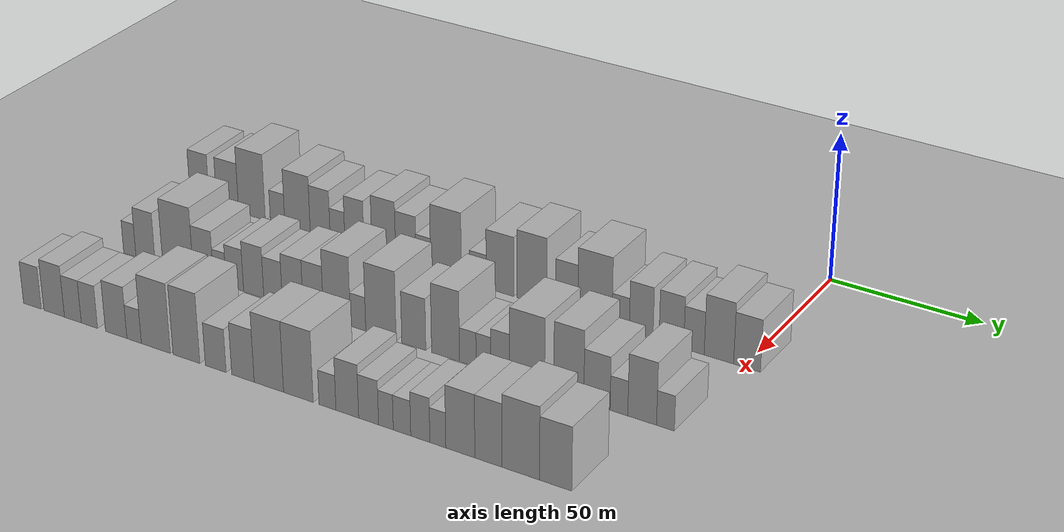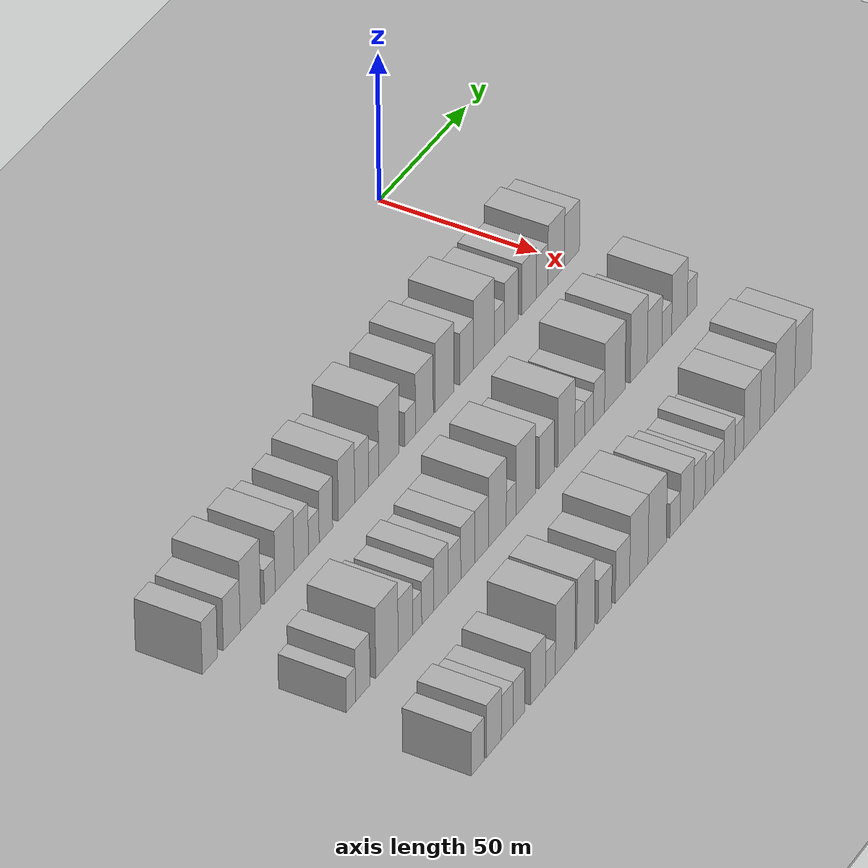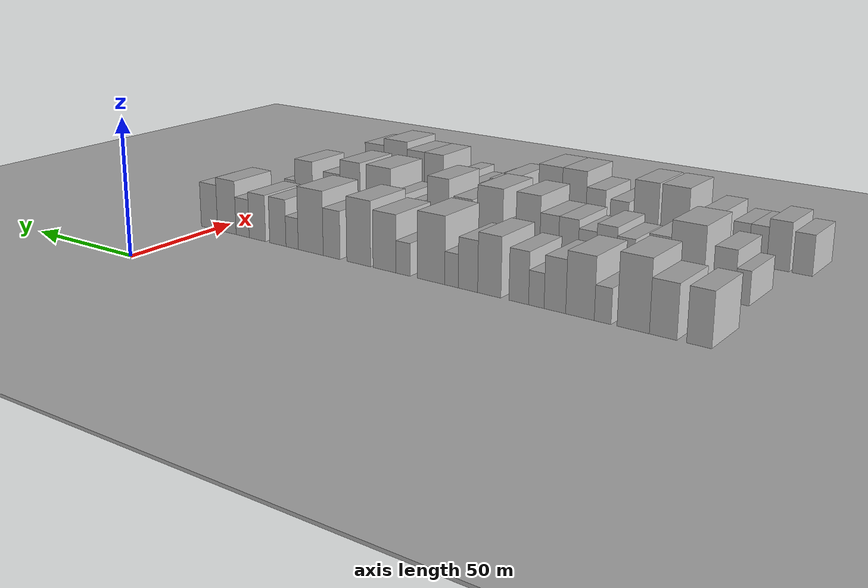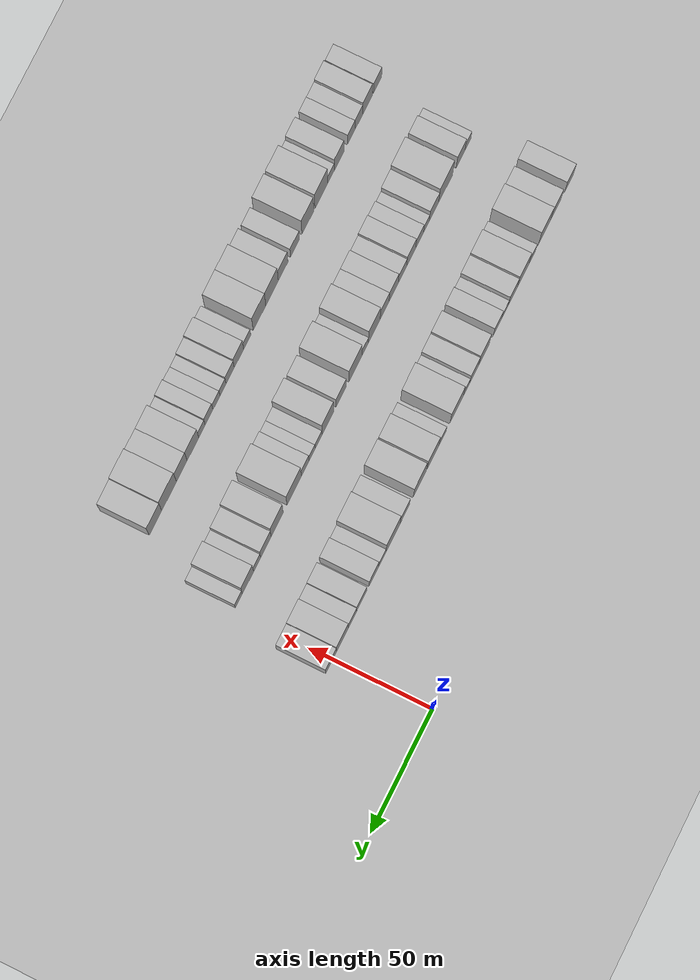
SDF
<sdf version="1.6">
 <world name="default">
  <include><name>ground_plane_1</name><uri>model://HANNAS_ground_plane</uri></include>
  <include>
   <name>ground_plane_2</name>
   <uri>model://HANNAS_ground_plane</uri>
   <pose>100 0 0  0 0 0</pose>
  </include>
  <model name="building_50">
   <static>1</static>
   <pose>50.0000 -196.6402 0 0.000000 0.000000 0.000000</pose>
   <link name="link">
    <pose>0 0 9.00 0 0 0</pose>
    <collision name="collision"><geometry><box><size>20.0000 7.7727 18.0000</size></box></geometry></collision>
    <visual name="visual">
     <cast_shadows>0</cast_shadows>
     <geometry><box><size>20.0000 7.7727 18.0000</size></box></geometry>
     <material>
      <script>
       <uri>model://HANNAS_wall/materials/scripts</uri>
       <uri>model://HANNAS_wall/materials/textures</uri>
       <name>vrc/HANNAS_wall</name>
      </script>
     </material>
    </visual>
   </link>
  </model>
  <model name="building_51">
   <static>1</static>
   <pose>50.0000 -185.3771 0 0.000000 0.000000 0.000000</pose>
   <link name="link">
    <pose>0 0 9.00 0 0 0</pose>
    <collision name="collision"><geometry><box><size>20.0000 8.7536 18.0000</size></box></geometry></collision>
    <visual name="visual">
     <cast_shadows>0</cast_shadows>
     <geometry><box><size>20.0000 8.7536 18.0000</size></box></geometry>
     <material>
      <script>
       <uri>model://HANNAS_wall/materials/scripts</uri>
       <uri>model://HANNAS_wall/materials/textures</uri>
       <name>vrc/HANNAS_wall</name>
      </script>
     </material>
    </visual>
   </link>
  </model>
  <model name="building_52">
   <static>1</static>
   <pose>50.0000 -175.7151 0 0.000000 0.000000 0.000000</pose>
   <link name="link">
    <pose>0 0 12.00 0 0 0</pose>
    <collision name="collision"><geometry><box><size>20.0000 10.5704 24.0000</size></box></geometry></collision>
    <visual name="visual">
     <cast_shadows>0</cast_shadows>
     <geometry><box><size>20.0000 10.5704 24.0000</size></box></geometry>
     <material>
      <script>
       <uri>model://HANNAS_wall/materials/scripts</uri>
       <uri>model://HANNAS_wall/materials/textures</uri>
       <name>vrc/HANNAS_wall</name>
      </script>
     </material>
    </visual>
   </link>
  </model>
  <model name="building_53">
   <static>1</static>
   <pose>50.0000 -165.5970 0 0.000000 0.000000 0.000000</pose>
   <link name="link">
    <pose>0 0 6.00 0 0 0</pose>
    <collision name="collision"><geometry><box><size>20.0000 5.6657 12.0000</size></box></geometry></collision>
    <visual name="visual">
     <cast_shadows>0</cast_shadows>
     <geometry><box><size>20.0000 5.6657 12.0000</size></box></geometry>
     <material>
      <script>
       <uri>model://HANNAS_wall/materials/scripts</uri>
       <uri>model://HANNAS_wall/materials/textures</uri>
       <name>vrc/HANNAS_wall</name>
      </script>
     </material>
    </visual>
   </link>
  </model>
  <model name="building_54">
   <static>1</static>
   <pose>50.0000 -157.8169 0 0.000000 0.000000 0.000000</pose>
   <link name="link">
    <pose>0 0 10.50 0 0 0</pose>
    <collision name="collision"><geometry><box><size>20.0000 9.8945 21.0000</size></box></geometry></collision>
    <visual name="visual">
     <cast_shadows>0</cast_shadows>
     <geometry><box><size>20.0000 9.8945 21.0000</size></box></geometry>
     <material>
      <script>
       <uri>model://HANNAS_wall/materials/scripts</uri>
       <uri>model://HANNAS_wall/materials/textures</uri>
       <name>vrc/HANNAS_wall</name>
      </script>
     </material>
    </visual>
   </link>
  </model>
  <model name="building_55">
   <static>1</static>
   <pose>50.0000 -149.0319 0 0.000000 0.000000 0.000000</pose>
   <link name="link">
    <pose>0 0 9.00 0 0 0</pose>
    <collision name="collision"><geometry><box><size>20.0000 7.6756 18.0000</size></box></geometry></collision>
    <visual name="visual">
     <cast_shadows>0</cast_shadows>
     <geometry><box><size>20.0000 7.6756 18.0000</size></box></geometry>
     <material>
      <script>
       <uri>model://HANNAS_wall/materials/scripts</uri>
       <uri>model://HANNAS_wall/materials/textures</uri>
       <name>vrc/HANNAS_wall</name>
      </script>
     </material>
    </visual>
   </link>
  </model>
  <model name="building_56">
   <static>1</static>
   <pose>50.0000 -142.3919 0 0.000000 0.000000 0.000000</pose>
   <link name="link">
    <pose>0 0 6.00 0 0 0</pose>
    <collision name="collision"><geometry><box><size>20.0000 5.6045 12.0000</size></box></geometry></collision>
    <visual name="visual">
     <cast_shadows>0</cast_shadows>
     <geometry><box><size>20.0000 5.6045 12.0000</size></box></geometry>
     <material>
      <script>
       <uri>model://HANNAS_wall/materials/scripts</uri>
       <uri>model://HANNAS_wall/materials/textures</uri>
       <name>vrc/HANNAS_wall</name>
      </script>
     </material>
    </visual>
   </link>
  </model>
  <model name="building_57">
   <static>1</static>
   <pose>50.0000 -135.9577 0 0.000000 0.000000 0.000000</pose>
   <link name="link">
    <pose>0 0 9.00 0 0 0</pose>
    <collision name="collision"><geometry><box><size>20.0000 7.2639 18.0000</size></box></geometry></collision>
    <visual name="visual">
     <cast_shadows>0</cast_shadows>
     <geometry><box><size>20.0000 7.2639 18.0000</size></box></geometry>
     <material>
      <script>
       <uri>model://HANNAS_wall/materials/scripts</uri>
       <uri>model://HANNAS_wall/materials/textures</uri>
       <name>vrc/HANNAS_wall</name>
      </script>
     </material>
    </visual>
   </link>
  </model>
  <model name="building_58">
   <static>1</static>
   <pose>50.0000 -124.8921 0 0.000000 0.000000 0.000000</pose>
   <link name="link">
    <pose>0 0 10.50 0 0 0</pose>
    <collision name="collision"><geometry><box><size>20.0000 8.8673 21.0000</size></box></geometry></collision>
    <visual name="visual">
     <cast_shadows>0</cast_shadows>
     <geometry><box><size>20.0000 8.8673 21.0000</size></box></geometry>
     <material>
      <script>
       <uri>model://HANNAS_wall/materials/scripts</uri>
       <uri>model://HANNAS_wall/materials/textures</uri>
       <name>vrc/HANNAS_wall</name>
      </script>
     </material>
    </visual>
   </link>
  </model>
  <model name="building_59">
   <static>1</static>
   <pose>50.0000 -116.6675 0 0.000000 0.000000 0.000000</pose>
   <link name="link">
    <pose>0 0 9.00 0 0 0</pose>
    <collision name="collision"><geometry><box><size>20.0000 7.5818 18.0000</size></box></geometry></collision>
    <visual name="visual">
     <cast_shadows>0</cast_shadows>
     <geometry><box><size>20.0000 7.5818 18.0000</size></box></geometry>
     <material>
      <script>
       <uri>model://HANNAS_wall/materials/scripts</uri>
       <uri>model://HANNAS_wall/materials/textures</uri>
       <name>vrc/HANNAS_wall</name>
      </script>
     </material>
    </visual>
   </link>
  </model>
  <model name="building_60">
   <static>1</static>
   <pose>50.0000 -110.1980 0 0.000000 0.000000 0.000000</pose>
   <link name="link">
    <pose>0 0 6.00 0 0 0</pose>
    <collision name="collision"><geometry><box><size>20.0000 5.3574 12.0000</size></box></geometry></collision>
    <visual name="visual">
     <cast_shadows>0</cast_shadows>
     <geometry><box><size>20.0000 5.3574 12.0000</size></box></geometry>
     <material>
      <script>
       <uri>model://HANNAS_wall/materials/scripts</uri>
       <uri>model://HANNAS_wall/materials/textures</uri>
       <name>vrc/HANNAS_wall</name>
      </script>
     </material>
    </visual>
   </link>
  </model>
  <model name="building_61">
   <static>1</static>
   <pose>50.0000 -101.9220 0 0.000000 0.000000 0.000000</pose>
   <link name="link">
    <pose>0 0 12.00 0 0 0</pose>
    <collision name="collision"><geometry><box><size>20.0000 11.1946 24.0000</size></box></geometry></collision>
    <visual name="visual">
     <cast_shadows>0</cast_shadows>
     <geometry><box><size>20.0000 11.1946 24.0000</size></box></geometry>
     <material>
      <script>
       <uri>model://HANNAS_wall/materials/scripts</uri>
       <uri>model://HANNAS_wall/materials/textures</uri>
       <name>vrc/HANNAS_wall</name>
      </script>
     </material>
    </visual>
   </link>
  </model>
  <model name="building_62">
   <static>1</static>
   <pose>50.0000 -90.3593 0 0.000000 0.000000 0.000000</pose>
   <link name="link">
    <pose>0 0 6.00 0 0 0</pose>
    <collision name="collision"><geometry><box><size>20.0000 5.9306 12.0000</size></box></geometry></collision>
    <visual name="visual">
     <cast_shadows>0</cast_shadows>
     <geometry><box><size>20.0000 5.9306 12.0000</size></box></geometry>
     <material>
      <script>
       <uri>model://HANNAS_wall/materials/scripts</uri>
       <uri>model://HANNAS_wall/materials/textures</uri>
       <name>vrc/HANNAS_wall</name>
      </script>
     </material>
    </visual>
   </link>
  </model>
  <model name="building_63">
   <static>1</static>
   <pose>50.0000 -82.4639 0 0.000000 0.000000 0.000000</pose>
   <link name="link">
    <pose>0 0 10.50 0 0 0</pose>
    <collision name="collision"><geometry><box><size>20.0000 9.8602 21.0000</size></box></geometry></collision>
    <visual name="visual">
     <cast_shadows>0</cast_shadows>
     <geometry><box><size>20.0000 9.8602 21.0000</size></box></geometry>
     <material>
      <script>
       <uri>model://HANNAS_wall/materials/scripts</uri>
       <uri>model://HANNAS_wall/materials/textures</uri>
       <name>vrc/HANNAS_wall</name>
      </script>
     </material>
    </visual>
   </link>
  </model>
  <model name="building_64">
   <static>1</static>
   <pose>50.0000 -71.2264 0 0.000000 0.000000 0.000000</pose>
   <link name="link">
    <pose>0 0 12.00 0 0 0</pose>
    <collision name="collision"><geometry><box><size>20.0000 10.6148 24.0000</size></box></geometry></collision>
    <visual name="visual">
     <cast_shadows>0</cast_shadows>
     <geometry><box><size>20.0000 10.6148 24.0000</size></box></geometry>
     <material>
      <script>
       <uri>model://HANNAS_wall/materials/scripts</uri>
       <uri>model://HANNAS_wall/materials/textures</uri>
       <name>vrc/HANNAS_wall</name>
      </script>
     </material>
    </visual>
   </link>
  </model>
  <model name="building_65">
   <static>1</static>
   <pose>50.0000 -59.0581 0 0.000000 0.000000 0.000000</pose>
   <link name="link">
    <pose>0 0 9.00 0 0 0</pose>
    <collision name="collision"><geometry><box><size>20.0000 7.7218 18.0000</size></box></geometry></collision>
    <visual name="visual">
     <cast_shadows>0</cast_shadows>
     <geometry><box><size>20.0000 7.7218 18.0000</size></box></geometry>
     <material>
      <script>
       <uri>model://HANNAS_wall/materials/scripts</uri>
       <uri>model://HANNAS_wall/materials/textures</uri>
       <name>vrc/HANNAS_wall</name>
      </script>
     </material>
    </visual>
   </link>
  </model>
  <model name="building_66">
   <static>1</static>
   <pose>50.0000 -49.3336 0 0.000000 0.000000 0.000000</pose>
   <link name="link">
    <pose>0 0 12.00 0 0 0</pose>
    <collision name="collision"><geometry><box><size>20.0000 11.7272 24.0000</size></box></geometry></collision>
    <visual name="visual">
     <cast_shadows>0</cast_shadows>
     <geometry><box><size>20.0000 11.7272 24.0000</size></box></geometry>
     <material>
      <script>
       <uri>model://HANNAS_wall/materials/scripts</uri>
       <uri>model://HANNAS_wall/materials/textures</uri>
       <name>vrc/HANNAS_wall</name>
      </script>
     </material>
    </visual>
   </link>
  </model>
  <model name="building_67">
   <static>1</static>
   <pose>50.0000 -40.5230 0 0.000000 0.000000 0.000000</pose>
   <link name="link">
    <pose>0 0 6.00 0 0 0</pose>
    <collision name="collision"><geometry><box><size>20.0000 5.8940 12.0000</size></box></geometry></collision>
    <visual name="visual">
     <cast_shadows>0</cast_shadows>
     <geometry><box><size>20.0000 5.8940 12.0000</size></box></geometry>
     <material>
      <script>
       <uri>model://HANNAS_wall/materials/scripts</uri>
       <uri>model://HANNAS_wall/materials/textures</uri>
       <name>vrc/HANNAS_wall</name>
      </script>
     </material>
    </visual>
   </link>
  </model>
  <model name="building_68">
   <static>1</static>
   <pose>50.0000 -33.5861 0 0.000000 0.000000 0.000000</pose>
   <link name="link">
    <pose>0 0 9.00 0 0 0</pose>
    <collision name="collision"><geometry><box><size>20.0000 7.9797 18.0000</size></box></geometry></collision>
    <visual name="visual">
     <cast_shadows>0</cast_shadows>
     <geometry><box><size>20.0000 7.9797 18.0000</size></box></geometry>
     <material>
      <script>
       <uri>model://HANNAS_wall/materials/scripts</uri>
       <uri>model://HANNAS_wall/materials/textures</uri>
       <name>vrc/HANNAS_wall</name>
      </script>
     </material>
    </visual>
   </link>
  </model>
  <model name="building_69">
   <static>1</static>
   <pose>50.0000 -23.4748 0 0.000000 0.000000 0.000000</pose>
   <link name="link">
    <pose>0 0 9.00 0 0 0</pose>
    <collision name="collision"><geometry><box><size>20.0000 8.2430 18.0000</size></box></geometry></collision>
    <visual name="visual">
     <cast_shadows>0</cast_shadows>
     <geometry><box><size>20.0000 8.2430 18.0000</size></box></geometry>
     <material>
      <script>
       <uri>model://HANNAS_wall/materials/scripts</uri>
       <uri>model://HANNAS_wall/materials/textures</uri>
       <name>vrc/HANNAS_wall</name>
      </script>
     </material>
    </visual>
   </link>
  </model>
  <model name="building_70">
   <static>1</static>
   <pose>50.0000 -15.9888 0 0.000000 0.000000 0.000000</pose>
   <link name="link">
    <pose>0 0 7.50 0 0 0</pose>
    <collision name="collision"><geometry><box><size>20.0000 6.7289 15.0000</size></box></geometry></collision>
    <visual name="visual">
     <cast_shadows>0</cast_shadows>
     <geometry><box><size>20.0000 6.7289 15.0000</size></box></geometry>
     <material>
      <script>
       <uri>model://HANNAS_wall/materials/scripts</uri>
       <uri>model://HANNAS_wall/materials/textures</uri>
       <name>vrc/HANNAS_wall</name>
      </script>
     </material>
    </visual>
   </link>
  </model>
  <model name="building_71">
   <static>1</static>
   <pose>50.0000 -7.8164 0 0.000000 0.000000 0.000000</pose>
   <link name="link">
    <pose>0 0 10.50 0 0 0</pose>
    <collision name="collision"><geometry><box><size>20.0000 9.6159 21.0000</size></box></geometry></collision>
    <visual name="visual">
     <cast_shadows>0</cast_shadows>
     <geometry><box><size>20.0000 9.6159 21.0000</size></box></geometry>
     <material>
      <script>
       <uri>model://HANNAS_wall/materials/scripts</uri>
       <uri>model://HANNAS_wall/materials/textures</uri>
       <name>vrc/HANNAS_wall</name>
      </script>
     </material>
    </visual>
   </link>
  </model>
  <model name="building_72">
   <static>1</static>
   <pose>50.0000 1.3254 0 0.000000 0.000000 0.000000</pose>
   <link name="link">
    <pose>0 0 9.00 0 0 0</pose>
    <collision name="collision"><geometry><box><size>20.0000 8.6677 18.0000</size></box></geometry></collision>
    <visual name="visual">
     <cast_shadows>0</cast_shadows>
     <geometry><box><size>20.0000 8.6677 18.0000</size></box></geometry>
     <material>
      <script>
       <uri>model://HANNAS_wall/materials/scripts</uri>
       <uri>model://HANNAS_wall/materials/textures</uri>
       <name>vrc/HANNAS_wall</name>
      </script>
     </material>
    </visual>
   </link>
  </model>
  <model name="building_187">
   <static>1</static>
   <pose>90.0000 -193.4562 0 0.000000 0.000000 0.000000</pose>
   <link name="link">
    <pose>0 0 6.00 0 0 0</pose>
    <collision name="collision"><geometry><box><size>20.0000 4.8399 12.0000</size></box></geometry></collision>
    <visual name="visual">
     <cast_shadows>0</cast_shadows>
     <geometry><box><size>20.0000 4.8399 12.0000</size></box></geometry>
     <material>
      <script>
       <uri>model://HANNAS_wall/materials/scripts</uri>
       <uri>model://HANNAS_wall/materials/textures</uri>
       <name>vrc/HANNAS_wall</name>
      </script>
     </material>
    </visual>
   </link>
  </model>
  <model name="building_188">
   <static>1</static>
   <pose>90.0000 -187.2485 0 0.000000 0.000000 0.000000</pose>
   <link name="link">
    <pose>0 0 9.00 0 0 0</pose>
    <collision name="collision"><geometry><box><size>20.0000 7.5754 18.0000</size></box></geometry></collision>
    <visual name="visual">
     <cast_shadows>0</cast_shadows>
     <geometry><box><size>20.0000 7.5754 18.0000</size></box></geometry>
     <material>
      <script>
       <uri>model://HANNAS_wall/materials/scripts</uri>
       <uri>model://HANNAS_wall/materials/textures</uri>
       <name>vrc/HANNAS_wall</name>
      </script>
     </material>
    </visual>
   </link>
  </model>
  <model name="building_189">
   <static>1</static>
   <pose>90.0000 -174.5279 0 0.000000 0.000000 0.000000</pose>
   <link name="link">
    <pose>0 0 12.00 0 0 0</pose>
    <collision name="collision"><geometry><box><size>20.0000 11.8659 24.0000</size></box></geometry></collision>
    <visual name="visual">
     <cast_shadows>0</cast_shadows>
     <geometry><box><size>20.0000 11.8659 24.0000</size></box></geometry>
     <material>
      <script>
       <uri>model://HANNAS_wall/materials/scripts</uri>
       <uri>model://HANNAS_wall/materials/textures</uri>
       <name>vrc/HANNAS_wall</name>
      </script>
     </material>
    </visual>
   </link>
  </model>
  <model name="building_190">
   <static>1</static>
   <pose>90.0000 -164.7152 0 0.000000 0.000000 0.000000</pose>
   <link name="link">
    <pose>0 0 9.00 0 0 0</pose>
    <collision name="collision"><geometry><box><size>20.0000 7.7595 18.0000</size></box></geometry></collision>
    <visual name="visual">
     <cast_shadows>0</cast_shadows>
     <geometry><box><size>20.0000 7.7595 18.0000</size></box></geometry>
     <material>
      <script>
       <uri>model://HANNAS_wall/materials/scripts</uri>
       <uri>model://HANNAS_wall/materials/textures</uri>
       <name>vrc/HANNAS_wall</name>
      </script>
     </material>
    </visual>
   </link>
  </model>
  <model name="building_191">
   <static>1</static>
   <pose>90.0000 -158.4291 0 0.000000 0.000000 0.000000</pose>
   <link name="link">
    <pose>0 0 6.00 0 0 0</pose>
    <collision name="collision"><geometry><box><size>20.0000 4.8127 12.0000</size></box></geometry></collision>
    <visual name="visual">
     <cast_shadows>0</cast_shadows>
     <geometry><box><size>20.0000 4.8127 12.0000</size></box></geometry>
     <material>
      <script>
       <uri>model://HANNAS_wall/materials/scripts</uri>
       <uri>model://HANNAS_wall/materials/textures</uri>
       <name>vrc/HANNAS_wall</name>
      </script>
     </material>
    </visual>
   </link>
  </model>
  <model name="building_192">
   <static>1</static>
   <pose>90.0000 -152.7436 0 0.000000 0.000000 0.000000</pose>
   <link name="link">
    <pose>0 0 7.50 0 0 0</pose>
    <collision name="collision"><geometry><box><size>20.0000 6.5583 15.0000</size></box></geometry></collision>
    <visual name="visual">
     <cast_shadows>0</cast_shadows>
     <geometry><box><size>20.0000 6.5583 15.0000</size></box></geometry>
     <material>
      <script>
       <uri>model://HANNAS_wall/materials/scripts</uri>
       <uri>model://HANNAS_wall/materials/textures</uri>
       <name>vrc/HANNAS_wall</name>
      </script>
     </material>
    </visual>
   </link>
  </model>
  <model name="building_193">
   <static>1</static>
   <pose>90.0000 -145.6648 0 0.000000 0.000000 0.000000</pose>
   <link name="link">
    <pose>0 0 9.00 0 0 0</pose>
    <collision name="collision"><geometry><box><size>20.0000 7.5993 18.0000</size></box></geometry></collision>
    <visual name="visual">
     <cast_shadows>0</cast_shadows>
     <geometry><box><size>20.0000 7.5993 18.0000</size></box></geometry>
     <material>
      <script>
       <uri>model://HANNAS_wall/materials/scripts</uri>
       <uri>model://HANNAS_wall/materials/textures</uri>
       <name>vrc/HANNAS_wall</name>
      </script>
     </material>
    </visual>
   </link>
  </model>
  <model name="building_194">
   <static>1</static>
   <pose>90.0000 -138.4148 0 0.000000 0.000000 0.000000</pose>
   <link name="link">
    <pose>0 0 7.50 0 0 0</pose>
    <collision name="collision"><geometry><box><size>20.0000 6.9006 15.0000</size></box></geometry></collision>
    <visual name="visual">
     <cast_shadows>0</cast_shadows>
     <geometry><box><size>20.0000 6.9006 15.0000</size></box></geometry>
     <material>
      <script>
       <uri>model://HANNAS_wall/materials/scripts</uri>
       <uri>model://HANNAS_wall/materials/textures</uri>
       <name>vrc/HANNAS_wall</name>
      </script>
     </material>
    </visual>
   </link>
  </model>
  <model name="building_195">
   <static>1</static>
   <pose>90.0000 -131.1266 0 0.000000 0.000000 0.000000</pose>
   <link name="link">
    <pose>0 0 9.00 0 0 0</pose>
    <collision name="collision"><geometry><box><size>20.0000 7.6757 18.0000</size></box></geometry></collision>
    <visual name="visual">
     <cast_shadows>0</cast_shadows>
     <geometry><box><size>20.0000 7.6757 18.0000</size></box></geometry>
     <material>
      <script>
       <uri>model://HANNAS_wall/materials/scripts</uri>
       <uri>model://HANNAS_wall/materials/textures</uri>
       <name>vrc/HANNAS_wall</name>
      </script>
     </material>
    </visual>
   </link>
  </model>
  <model name="building_196">
   <static>1</static>
   <pose>90.0000 -123.5743 0 0.000000 0.000000 0.000000</pose>
   <link name="link">
    <pose>0 0 9.00 0 0 0</pose>
    <collision name="collision"><geometry><box><size>20.0000 7.4290 18.0000</size></box></geometry></collision>
    <visual name="visual">
     <cast_shadows>0</cast_shadows>
     <geometry><box><size>20.0000 7.4290 18.0000</size></box></geometry>
     <material>
      <script>
       <uri>model://HANNAS_wall/materials/scripts</uri>
       <uri>model://HANNAS_wall/materials/textures</uri>
       <name>vrc/HANNAS_wall</name>
      </script>
     </material>
    </visual>
   </link>
  </model>
  <model name="building_197">
   <static>1</static>
   <pose>90.0000 -114.9617 0 0.000000 0.000000 0.000000</pose>
   <link name="link">
    <pose>0 0 12.00 0 0 0</pose>
    <collision name="collision"><geometry><box><size>20.0000 9.7962 24.0000</size></box></geometry></collision>
    <visual name="visual">
     <cast_shadows>0</cast_shadows>
     <geometry><box><size>20.0000 9.7962 24.0000</size></box></geometry>
     <material>
      <script>
       <uri>model://HANNAS_wall/materials/scripts</uri>
       <uri>model://HANNAS_wall/materials/textures</uri>
       <name>vrc/HANNAS_wall</name>
      </script>
     </material>
    </visual>
   </link>
  </model>
  <model name="building_198">
   <static>1</static>
   <pose>90.0000 -107.3405 0 0.000000 0.000000 0.000000</pose>
   <link name="link">
    <pose>0 0 6.00 0 0 0</pose>
    <collision name="collision"><geometry><box><size>20.0000 5.4462 12.0000</size></box></geometry></collision>
    <visual name="visual">
     <cast_shadows>0</cast_shadows>
     <geometry><box><size>20.0000 5.4462 12.0000</size></box></geometry>
     <material>
      <script>
       <uri>model://HANNAS_wall/materials/scripts</uri>
       <uri>model://HANNAS_wall/materials/textures</uri>
       <name>vrc/HANNAS_wall</name>
      </script>
     </material>
    </visual>
   </link>
  </model>
  <model name="building_199">
   <static>1</static>
   <pose>90.0000 -99.2210 0 0.000000 0.000000 0.000000</pose>
   <link name="link">
    <pose>0 0 12.00 0 0 0</pose>
    <collision name="collision"><geometry><box><size>20.0000 10.7928 24.0000</size></box></geometry></collision>
    <visual name="visual">
     <cast_shadows>0</cast_shadows>
     <geometry><box><size>20.0000 10.7928 24.0000</size></box></geometry>
     <material>
      <script>
       <uri>model://HANNAS_wall/materials/scripts</uri>
       <uri>model://HANNAS_wall/materials/textures</uri>
       <name>vrc/HANNAS_wall</name>
      </script>
     </material>
    </visual>
   </link>
  </model>
  <model name="building_200">
   <static>1</static>
   <pose>90.0000 -87.6191 0 0.000000 0.000000 0.000000</pose>
   <link name="link">
    <pose>0 0 9.00 0 0 0</pose>
    <collision name="collision"><geometry><box><size>20.0000 8.4111 18.0000</size></box></geometry></collision>
    <visual name="visual">
     <cast_shadows>0</cast_shadows>
     <geometry><box><size>20.0000 8.4111 18.0000</size></box></geometry>
     <material>
      <script>
       <uri>model://HANNAS_wall/materials/scripts</uri>
       <uri>model://HANNAS_wall/materials/textures</uri>
       <name>vrc/HANNAS_wall</name>
      </script>
     </material>
    </visual>
   </link>
  </model>
  <model name="building_201">
   <static>1</static>
   <pose>90.0000 -76.5967 0 0.000000 0.000000 0.000000</pose>
   <link name="link">
    <pose>0 0 12.00 0 0 0</pose>
    <collision name="collision"><geometry><box><size>20.0000 9.6337 24.0000</size></box></geometry></collision>
    <visual name="visual">
     <cast_shadows>0</cast_shadows>
     <geometry><box><size>20.0000 9.6337 24.0000</size></box></geometry>
     <material>
      <script>
       <uri>model://HANNAS_wall/materials/scripts</uri>
       <uri>model://HANNAS_wall/materials/textures</uri>
       <name>vrc/HANNAS_wall</name>
      </script>
     </material>
    </visual>
   </link>
  </model>
  <model name="building_202">
   <static>1</static>
   <pose>90.0000 -68.9331 0 0.000000 0.000000 0.000000</pose>
   <link name="link">
    <pose>0 0 6.00 0 0 0</pose>
    <collision name="collision"><geometry><box><size>20.0000 5.6935 12.0000</size></box></geometry></collision>
    <visual name="visual">
     <cast_shadows>0</cast_shadows>
     <geometry><box><size>20.0000 5.6935 12.0000</size></box></geometry>
     <material>
      <script>
       <uri>model://HANNAS_wall/materials/scripts</uri>
       <uri>model://HANNAS_wall/materials/textures</uri>
       <name>vrc/HANNAS_wall</name>
      </script>
     </material>
    </visual>
   </link>
  </model>
  <model name="building_203">
   <static>1</static>
   <pose>90.0000 -63.6146 0 0.000000 0.000000 0.000000</pose>
   <link name="link">
    <pose>0 0 6.00 0 0 0</pose>
    <collision name="collision"><geometry><box><size>20.0000 4.9434 12.0000</size></box></geometry></collision>
    <visual name="visual">
     <cast_shadows>0</cast_shadows>
     <geometry><box><size>20.0000 4.9434 12.0000</size></box></geometry>
     <material>
      <script>
       <uri>model://HANNAS_wall/materials/scripts</uri>
       <uri>model://HANNAS_wall/materials/textures</uri>
       <name>vrc/HANNAS_wall</name>
      </script>
     </material>
    </visual>
   </link>
  </model>
  <model name="building_204">
   <static>1</static>
   <pose>90.0000 -57.9776 0 0.000000 0.000000 0.000000</pose>
   <link name="link">
    <pose>0 0 7.50 0 0 0</pose>
    <collision name="collision"><geometry><box><size>20.0000 6.3308 15.0000</size></box></geometry></collision>
    <visual name="visual">
     <cast_shadows>0</cast_shadows>
     <geometry><box><size>20.0000 6.3308 15.0000</size></box></geometry>
     <material>
      <script>
       <uri>model://HANNAS_wall/materials/scripts</uri>
       <uri>model://HANNAS_wall/materials/textures</uri>
       <name>vrc/HANNAS_wall</name>
      </script>
     </material>
    </visual>
   </link>
  </model>
  <model name="building_205">
   <static>1</static>
   <pose>90.0000 -48.9241 0 0.000000 0.000000 0.000000</pose>
   <link name="link">
    <pose>0 0 12.00 0 0 0</pose>
    <collision name="collision"><geometry><box><size>20.0000 11.7762 24.0000</size></box></geometry></collision>
    <visual name="visual">
     <cast_shadows>0</cast_shadows>
     <geometry><box><size>20.0000 11.7762 24.0000</size></box></geometry>
     <material>
      <script>
       <uri>model://HANNAS_wall/materials/scripts</uri>
       <uri>model://HANNAS_wall/materials/textures</uri>
       <name>vrc/HANNAS_wall</name>
      </script>
     </material>
    </visual>
   </link>
  </model>
  <model name="building_206">
   <static>1</static>
   <pose>90.0000 -35.0987 0 0.000000 0.000000 0.000000</pose>
   <link name="link">
    <pose>0 0 12.00 0 0 0</pose>
    <collision name="collision"><geometry><box><size>20.0000 9.8747 24.0000</size></box></geometry></collision>
    <visual name="visual">
     <cast_shadows>0</cast_shadows>
     <geometry><box><size>20.0000 9.8747 24.0000</size></box></geometry>
     <material>
      <script>
       <uri>model://HANNAS_wall/materials/scripts</uri>
       <uri>model://HANNAS_wall/materials/textures</uri>
       <name>vrc/HANNAS_wall</name>
      </script>
     </material>
    </visual>
   </link>
  </model>
  <model name="building_207">
   <static>1</static>
   <pose>90.0000 -25.8969 0 0.000000 0.000000 0.000000</pose>
   <link name="link">
    <pose>0 0 9.00 0 0 0</pose>
    <collision name="collision"><geometry><box><size>20.0000 8.5288 18.0000</size></box></geometry></collision>
    <visual name="visual">
     <cast_shadows>0</cast_shadows>
     <geometry><box><size>20.0000 8.5288 18.0000</size></box></geometry>
     <material>
      <script>
       <uri>model://HANNAS_wall/materials/scripts</uri>
       <uri>model://HANNAS_wall/materials/textures</uri>
       <name>vrc/HANNAS_wall</name>
      </script>
     </material>
    </visual>
   </link>
  </model>
  <model name="building_208">
   <static>1</static>
   <pose>90.0000 -18.7853 0 0.000000 0.000000 0.000000</pose>
   <link name="link">
    <pose>0 0 6.00 0 0 0</pose>
    <collision name="collision"><geometry><box><size>20.0000 5.6943 12.0000</size></box></geometry></collision>
    <visual name="visual">
     <cast_shadows>0</cast_shadows>
     <geometry><box><size>20.0000 5.6943 12.0000</size></box></geometry>
     <material>
      <script>
       <uri>model://HANNAS_wall/materials/scripts</uri>
       <uri>model://HANNAS_wall/materials/textures</uri>
       <name>vrc/HANNAS_wall</name>
      </script>
     </material>
    </visual>
   </link>
  </model>
  <model name="building_209">
   <static>1</static>
   <pose>90.0000 -11.3557 0 0.000000 0.000000 0.000000</pose>
   <link name="link">
    <pose>0 0 10.50 0 0 0</pose>
    <collision name="collision"><geometry><box><size>20.0000 9.1650 21.0000</size></box></geometry></collision>
    <visual name="visual">
     <cast_shadows>0</cast_shadows>
     <geometry><box><size>20.0000 9.1650 21.0000</size></box></geometry>
     <material>
      <script>
       <uri>model://HANNAS_wall/materials/scripts</uri>
       <uri>model://HANNAS_wall/materials/textures</uri>
       <name>vrc/HANNAS_wall</name>
      </script>
     </material>
    </visual>
   </link>
  </model>
  <model name="building_210">
   <static>1</static>
   <pose>90.0000 -3.9449 0 0.000000 0.000000 0.000000</pose>
   <link name="link">
    <pose>0 0 6.00 0 0 0</pose>
    <collision name="collision"><geometry><box><size>20.0000 5.6567 12.0000</size></box></geometry></collision>
    <visual name="visual">
     <cast_shadows>0</cast_shadows>
     <geometry><box><size>20.0000 5.6567 12.0000</size></box></geometry>
     <material>
      <script>
       <uri>model://HANNAS_wall/materials/scripts</uri>
       <uri>model://HANNAS_wall/materials/textures</uri>
       <name>vrc/HANNAS_wall</name>
      </script>
     </material>
    </visual>
   </link>
  </model>
  <model name="building_326">
   <static>1</static>
   <pose>130.0000 -198.7115 0 0.000000 0.000000 0.000000</pose>
   <link name="link">
    <pose>0 0 7.50 0 0 0</pose>
    <collision name="collision"><geometry><box><size>20.0000 6.9392 15.0000</size></box></geometry></collision>
    <visual name="visual">
     <cast_shadows>0</cast_shadows>
     <geometry><box><size>20.0000 6.9392 15.0000</size></box></geometry>
     <material>
      <script>
       <uri>model://HANNAS_wall/materials/scripts</uri>
       <uri>model://HANNAS_wall/materials/textures</uri>
       <name>vrc/HANNAS_wall</name>
      </script>
     </material>
    </visual>
   </link>
  </model>
  <model name="building_327">
   <static>1</static>
   <pose>130.0000 -190.2545 0 0.000000 0.000000 0.000000</pose>
   <link name="link">
    <pose>0 0 9.00 0 0 0</pose>
    <collision name="collision"><geometry><box><size>20.0000 7.9747 18.0000</size></box></geometry></collision>
    <visual name="visual">
     <cast_shadows>0</cast_shadows>
     <geometry><box><size>20.0000 7.9747 18.0000</size></box></geometry>
     <material>
      <script>
       <uri>model://HANNAS_wall/materials/scripts</uri>
       <uri>model://HANNAS_wall/materials/textures</uri>
       <name>vrc/HANNAS_wall</name>
      </script>
     </material>
    </visual>
   </link>
  </model>
  <model name="building_328">
   <static>1</static>
   <pose>130.0000 -183.0365 0 0.000000 0.000000 0.000000</pose>
   <link name="link">
    <pose>0 0 7.50 0 0 0</pose>
    <collision name="collision"><geometry><box><size>20.0000 6.4613 15.0000</size></box></geometry></collision>
    <visual name="visual">
     <cast_shadows>0</cast_shadows>
     <geometry><box><size>20.0000 6.4613 15.0000</size></box></geometry>
     <material>
      <script>
       <uri>model://HANNAS_wall/materials/scripts</uri>
       <uri>model://HANNAS_wall/materials/textures</uri>
       <name>vrc/HANNAS_wall</name>
      </script>
     </material>
    </visual>
   </link>
  </model>
  <model name="building_329">
   <static>1</static>
   <pose>130.0000 -176.6964 0 0.000000 0.000000 0.000000</pose>
   <link name="link">
    <pose>0 0 7.50 0 0 0</pose>
    <collision name="collision"><geometry><box><size>20.0000 6.2189 15.0000</size></box></geometry></collision>
    <visual name="visual">
     <cast_shadows>0</cast_shadows>
     <geometry><box><size>20.0000 6.2189 15.0000</size></box></geometry>
     <material>
      <script>
       <uri>model://HANNAS_wall/materials/scripts</uri>
       <uri>model://HANNAS_wall/materials/textures</uri>
       <name>vrc/HANNAS_wall</name>
      </script>
     </material>
    </visual>
   </link>
  </model>
  <model name="building_330">
   <static>1</static>
   <pose>130.0000 -166.5585 0 0.000000 0.000000 0.000000</pose>
   <link name="link">
    <pose>0 0 9.00 0 0 0</pose>
    <collision name="collision"><geometry><box><size>20.0000 8.0570 18.0000</size></box></geometry></collision>
    <visual name="visual">
     <cast_shadows>0</cast_shadows>
     <geometry><box><size>20.0000 8.0570 18.0000</size></box></geometry>
     <material>
      <script>
       <uri>model://HANNAS_wall/materials/scripts</uri>
       <uri>model://HANNAS_wall/materials/textures</uri>
       <name>vrc/HANNAS_wall</name>
      </script>
     </material>
    </visual>
   </link>
  </model>
  <model name="building_331">
   <static>1</static>
   <pose>130.0000 -159.8235 0 0.000000 0.000000 0.000000</pose>
   <link name="link">
    <pose>0 0 6.00 0 0 0</pose>
    <collision name="collision"><geometry><box><size>20.0000 5.4130 12.0000</size></box></geometry></collision>
    <visual name="visual">
     <cast_shadows>0</cast_shadows>
     <geometry><box><size>20.0000 5.4130 12.0000</size></box></geometry>
     <material>
      <script>
       <uri>model://HANNAS_wall/materials/scripts</uri>
       <uri>model://HANNAS_wall/materials/textures</uri>
       <name>vrc/HANNAS_wall</name>
      </script>
     </material>
    </visual>
   </link>
  </model>
  <model name="building_332">
   <static>1</static>
   <pose>130.0000 -151.7555 0 0.000000 0.000000 0.000000</pose>
   <link name="link">
    <pose>0 0 12.00 0 0 0</pose>
    <collision name="collision"><geometry><box><size>20.0000 10.7230 24.0000</size></box></geometry></collision>
    <visual name="visual">
     <cast_shadows>0</cast_shadows>
     <geometry><box><size>20.0000 10.7230 24.0000</size></box></geometry>
     <material>
      <script>
       <uri>model://HANNAS_wall/materials/scripts</uri>
       <uri>model://HANNAS_wall/materials/textures</uri>
       <name>vrc/HANNAS_wall</name>
      </script>
     </material>
    </visual>
   </link>
  </model>
  <model name="building_333">
   <static>1</static>
   <pose>130.0000 -140.5081 0 0.000000 0.000000 0.000000</pose>
   <link name="link">
    <pose>0 0 12.00 0 0 0</pose>
    <collision name="collision"><geometry><box><size>20.0000 9.7718 24.0000</size></box></geometry></collision>
    <visual name="visual">
     <cast_shadows>0</cast_shadows>
     <geometry><box><size>20.0000 9.7718 24.0000</size></box></geometry>
     <material>
      <script>
       <uri>model://HANNAS_wall/materials/scripts</uri>
       <uri>model://HANNAS_wall/materials/textures</uri>
       <name>vrc/HANNAS_wall</name>
      </script>
     </material>
    </visual>
   </link>
  </model>
  <model name="building_334">
   <static>1</static>
   <pose>130.0000 -129.8752 0 0.000000 0.000000 0.000000</pose>
   <link name="link">
    <pose>0 0 7.50 0 0 0</pose>
    <collision name="collision"><geometry><box><size>20.0000 7.4941 15.0000</size></box></geometry></collision>
    <visual name="visual">
     <cast_shadows>0</cast_shadows>
     <geometry><box><size>20.0000 7.4941 15.0000</size></box></geometry>
     <material>
      <script>
       <uri>model://HANNAS_wall/materials/scripts</uri>
       <uri>model://HANNAS_wall/materials/textures</uri>
       <name>vrc/HANNAS_wall</name>
      </script>
     </material>
    </visual>
   </link>
  </model>
  <model name="building_335">
   <static>1</static>
   <pose>130.0000 -120.1341 0 0.000000 0.000000 0.000000</pose>
   <link name="link">
    <pose>0 0 9.00 0 0 0</pose>
    <collision name="collision"><geometry><box><size>20.0000 7.9881 18.0000</size></box></geometry></collision>
    <visual name="visual">
     <cast_shadows>0</cast_shadows>
     <geometry><box><size>20.0000 7.9881 18.0000</size></box></geometry>
     <material>
      <script>
       <uri>model://HANNAS_wall/materials/scripts</uri>
       <uri>model://HANNAS_wall/materials/textures</uri>
       <name>vrc/HANNAS_wall</name>
      </script>
     </material>
    </visual>
   </link>
  </model>
  <model name="building_336">
   <static>1</static>
   <pose>130.0000 -110.9661 0 0.000000 0.000000 0.000000</pose>
   <link name="link">
    <pose>0 0 12.00 0 0 0</pose>
    <collision name="collision"><geometry><box><size>20.0000 10.3480 24.0000</size></box></geometry></collision>
    <visual name="visual">
     <cast_shadows>0</cast_shadows>
     <geometry><box><size>20.0000 10.3480 24.0000</size></box></geometry>
     <material>
      <script>
       <uri>model://HANNAS_wall/materials/scripts</uri>
       <uri>model://HANNAS_wall/materials/textures</uri>
       <name>vrc/HANNAS_wall</name>
      </script>
     </material>
    </visual>
   </link>
  </model>
  <model name="building_337">
   <static>1</static>
   <pose>130.0000 -100.6401 0 0.000000 0.000000 0.000000</pose>
   <link name="link">
    <pose>0 0 12.00 0 0 0</pose>
    <collision name="collision"><geometry><box><size>20.0000 10.3039 24.0000</size></box></geometry></collision>
    <visual name="visual">
     <cast_shadows>0</cast_shadows>
     <geometry><box><size>20.0000 10.3039 24.0000</size></box></geometry>
     <material>
      <script>
       <uri>model://HANNAS_wall/materials/scripts</uri>
       <uri>model://HANNAS_wall/materials/textures</uri>
       <name>vrc/HANNAS_wall</name>
      </script>
     </material>
    </visual>
   </link>
  </model>
  <model name="building_338">
   <static>1</static>
   <pose>130.0000 -90.5752 0 0.000000 0.000000 0.000000</pose>
   <link name="link">
    <pose>0 0 6.00 0 0 0</pose>
    <collision name="collision"><geometry><box><size>20.0000 5.8258 12.0000</size></box></geometry></collision>
    <visual name="visual">
     <cast_shadows>0</cast_shadows>
     <geometry><box><size>20.0000 5.8258 12.0000</size></box></geometry>
     <material>
      <script>
       <uri>model://HANNAS_wall/materials/scripts</uri>
       <uri>model://HANNAS_wall/materials/textures</uri>
       <name>vrc/HANNAS_wall</name>
      </script>
     </material>
    </visual>
   </link>
  </model>
  <model name="building_339">
   <static>1</static>
   <pose>130.0000 -83.8008 0 0.000000 0.000000 0.000000</pose>
   <link name="link">
    <pose>0 0 9.00 0 0 0</pose>
    <collision name="collision"><geometry><box><size>20.0000 7.7231 18.0000</size></box></geometry></collision>
    <visual name="visual">
     <cast_shadows>0</cast_shadows>
     <geometry><box><size>20.0000 7.7231 18.0000</size></box></geometry>
     <material>
      <script>
       <uri>model://HANNAS_wall/materials/scripts</uri>
       <uri>model://HANNAS_wall/materials/textures</uri>
       <name>vrc/HANNAS_wall</name>
      </script>
     </material>
    </visual>
   </link>
  </model>
  <model name="building_340">
   <static>1</static>
   <pose>130.0000 -76.5899 0 0.000000 0.000000 0.000000</pose>
   <link name="link">
    <pose>0 0 7.50 0 0 0</pose>
    <collision name="collision"><geometry><box><size>20.0000 6.6986 15.0000</size></box></geometry></collision>
    <visual name="visual">
     <cast_shadows>0</cast_shadows>
     <geometry><box><size>20.0000 6.6986 15.0000</size></box></geometry>
     <material>
      <script>
       <uri>model://HANNAS_wall/materials/scripts</uri>
       <uri>model://HANNAS_wall/materials/textures</uri>
       <name>vrc/HANNAS_wall</name>
      </script>
     </material>
    </visual>
   </link>
  </model>
  <model name="building_341">
   <static>1</static>
   <pose>130.0000 -70.7711 0 0.000000 0.000000 0.000000</pose>
   <link name="link">
    <pose>0 0 6.00 0 0 0</pose>
    <collision name="collision"><geometry><box><size>20.0000 4.9391 12.0000</size></box></geometry></collision>
    <visual name="visual">
     <cast_shadows>0</cast_shadows>
     <geometry><box><size>20.0000 4.9391 12.0000</size></box></geometry>
     <material>
      <script>
       <uri>model://HANNAS_wall/materials/scripts</uri>
       <uri>model://HANNAS_wall/materials/textures</uri>
       <name>vrc/HANNAS_wall</name>
      </script>
     </material>
    </visual>
   </link>
  </model>
  <model name="building_342">
   <static>1</static>
   <pose>130.0000 -65.4029 0 0.000000 0.000000 0.000000</pose>
   <link name="link">
    <pose>0 0 6.00 0 0 0</pose>
    <collision name="collision"><geometry><box><size>20.0000 5.7972 12.0000</size></box></geometry></collision>
    <visual name="visual">
     <cast_shadows>0</cast_shadows>
     <geometry><box><size>20.0000 5.7972 12.0000</size></box></geometry>
     <material>
      <script>
       <uri>model://HANNAS_wall/materials/scripts</uri>
       <uri>model://HANNAS_wall/materials/textures</uri>
       <name>vrc/HANNAS_wall</name>
      </script>
     </material>
    </visual>
   </link>
  </model>
  <model name="building_343">
   <static>1</static>
   <pose>130.0000 -59.3517 0 0.000000 0.000000 0.000000</pose>
   <link name="link">
    <pose>0 0 7.50 0 0 0</pose>
    <collision name="collision"><geometry><box><size>20.0000 6.3052 15.0000</size></box></geometry></collision>
    <visual name="visual">
     <cast_shadows>0</cast_shadows>
     <geometry><box><size>20.0000 6.3052 15.0000</size></box></geometry>
     <material>
      <script>
       <uri>model://HANNAS_wall/materials/scripts</uri>
       <uri>model://HANNAS_wall/materials/textures</uri>
       <name>vrc/HANNAS_wall</name>
      </script>
     </material>
    </visual>
   </link>
  </model>
  <model name="building_344">
   <static>1</static>
   <pose>130.0000 -53.5907 0 0.000000 0.000000 0.000000</pose>
   <link name="link">
    <pose>0 0 6.00 0 0 0</pose>
    <collision name="collision"><geometry><box><size>20.0000 5.2168 12.0000</size></box></geometry></collision>
    <visual name="visual">
     <cast_shadows>0</cast_shadows>
     <geometry><box><size>20.0000 5.2168 12.0000</size></box></geometry>
     <material>
      <script>
       <uri>model://HANNAS_wall/materials/scripts</uri>
       <uri>model://HANNAS_wall/materials/textures</uri>
       <name>vrc/HANNAS_wall</name>
      </script>
     </material>
    </visual>
   </link>
  </model>
  <model name="building_345">
   <static>1</static>
   <pose>130.0000 -46.2655 0 0.000000 0.000000 0.000000</pose>
   <link name="link">
    <pose>0 0 10.50 0 0 0</pose>
    <collision name="collision"><geometry><box><size>20.0000 9.4336 21.0000</size></box></geometry></collision>
    <visual name="visual">
     <cast_shadows>0</cast_shadows>
     <geometry><box><size>20.0000 9.4336 21.0000</size></box></geometry>
     <material>
      <script>
       <uri>model://HANNAS_wall/materials/scripts</uri>
       <uri>model://HANNAS_wall/materials/textures</uri>
       <name>vrc/HANNAS_wall</name>
      </script>
     </material>
    </visual>
   </link>
  </model>
  <model name="building_346">
   <static>1</static>
   <pose>130.0000 -37.2231 0 0.000000 0.000000 0.000000</pose>
   <link name="link">
    <pose>0 0 10.50 0 0 0</pose>
    <collision name="collision"><geometry><box><size>20.0000 8.6513 21.0000</size></box></geometry></collision>
    <visual name="visual">
     <cast_shadows>0</cast_shadows>
     <geometry><box><size>20.0000 8.6513 21.0000</size></box></geometry>
     <material>
      <script>
       <uri>model://HANNAS_wall/materials/scripts</uri>
       <uri>model://HANNAS_wall/materials/textures</uri>
       <name>vrc/HANNAS_wall</name>
      </script>
     </material>
    </visual>
   </link>
  </model>
  <model name="building_347">
   <static>1</static>
   <pose>130.0000 -26.9486 0 0.000000 0.000000 0.000000</pose>
   <link name="link">
    <pose>0 0 12.00 0 0 0</pose>
    <collision name="collision"><geometry><box><size>20.0000 11.8978 24.0000</size></box></geometry></collision>
    <visual name="visual">
     <cast_shadows>0</cast_shadows>
     <geometry><box><size>20.0000 11.8978 24.0000</size></box></geometry>
     <material>
      <script>
       <uri>model://HANNAS_wall/materials/scripts</uri>
       <uri>model://HANNAS_wall/materials/textures</uri>
       <name>vrc/HANNAS_wall</name>
      </script>
     </material>
    </visual>
   </link>
  </model>
  <model name="building_348">
   <static>1</static>
   <pose>130.0000 -15.9642 0 0.000000 0.000000 0.000000</pose>
   <link name="link">
    <pose>0 0 10.50 0 0 0</pose>
    <collision name="collision"><geometry><box><size>20.0000 10.0710 21.0000</size></box></geometry></collision>
    <visual name="visual">
     <cast_shadows>0</cast_shadows>
     <geometry><box><size>20.0000 10.0710 21.0000</size></box></geometry>
     <material>
      <script>
       <uri>model://HANNAS_wall/materials/scripts</uri>
       <uri>model://HANNAS_wall/materials/textures</uri>
       <name>vrc/HANNAS_wall</name>
      </script>
     </material>
    </visual>
   </link>
  </model>
 </world>
</sdf>
